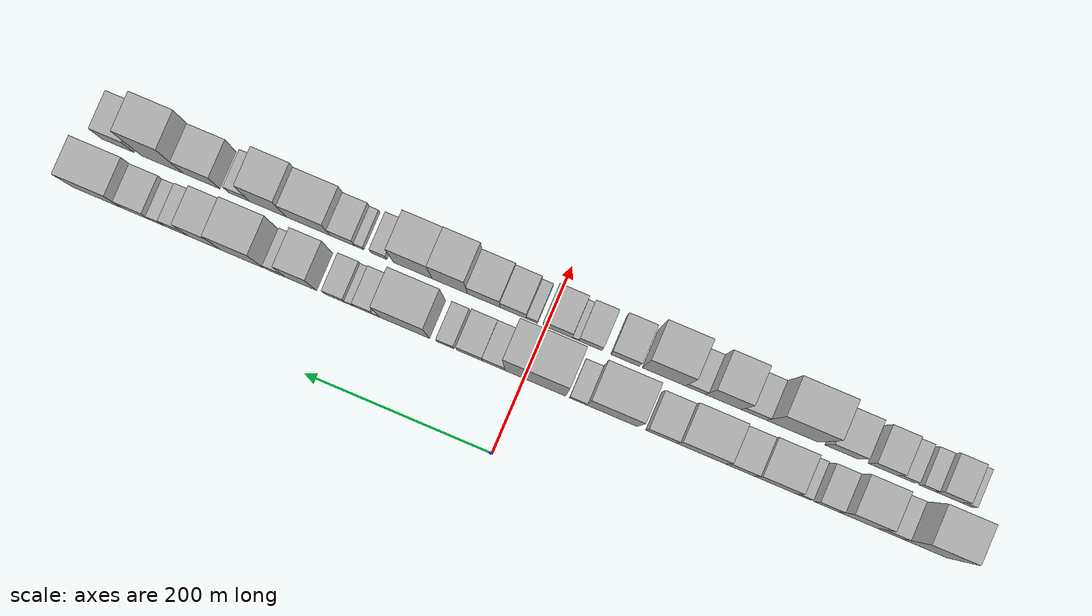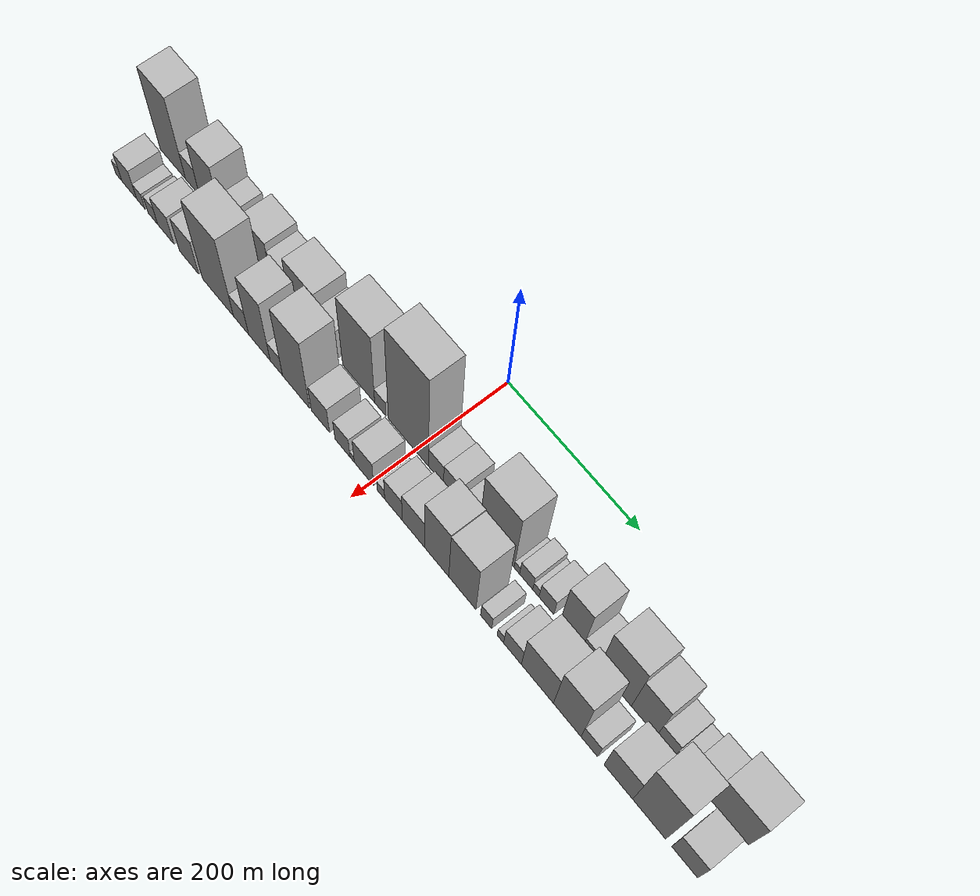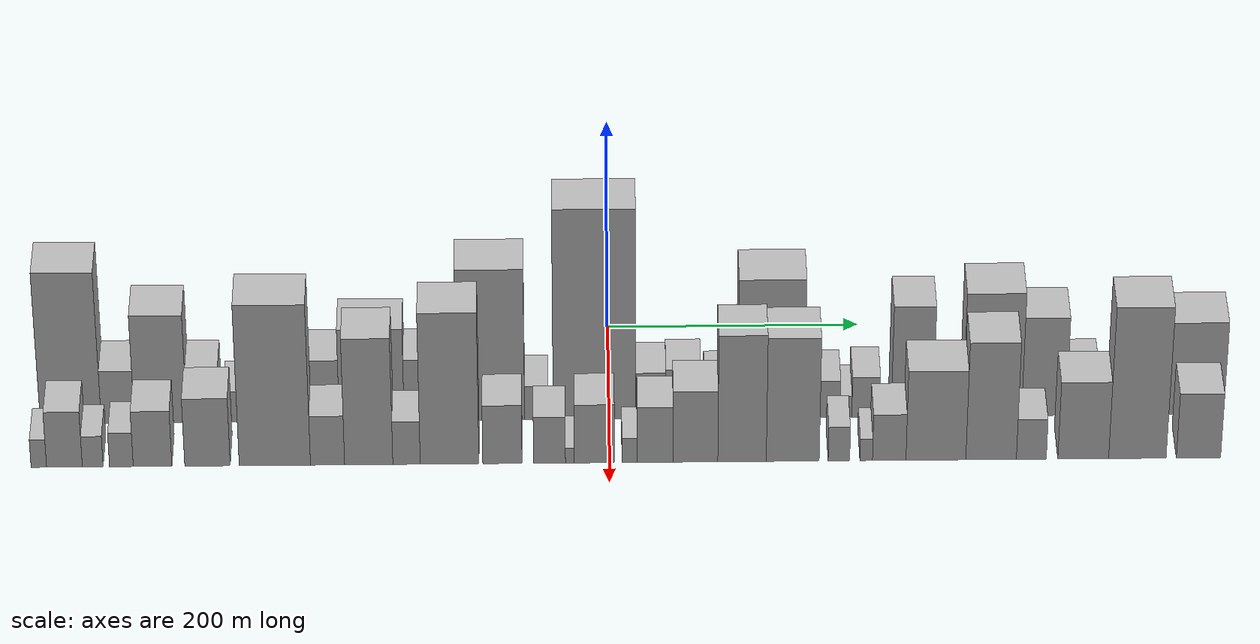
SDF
<sdf version="1.6">
 <world name="default">
  <scene>
   <sky><clouds><speed>12</speed></clouds></sky>
   <ambient>0.4 0.4 0.4 1</ambient>
   <background>0.7 0.7 0.7 1</background>
   <shadows>1</shadows>
  </scene>
  <gravity>0 0 -9.8066</gravity>
  <magnetic_field>6e-06 2.3e-05 -4.2e-05</magnetic_field>
  <physics default="0" name="default_physics" type="ode">
   <ode>
    <solver>
     <type>quick</type>
     <iters>10</iters>
     <sor>1.0</sor>
     <use_dynamic_moi_rescaling>0</use_dynamic_moi_rescaling>
    </solver>
    <constraints>
     <cfm>0</cfm>
     <erp>0.2</erp>
     <contact_max_correcting_vel>100</contact_max_correcting_vel>
     <contact_surface_layer>0.001</contact_surface_layer>
    </constraints>
   </ode>
   <max_step_size>0.004</max_step_size>
   <real_time_factor>1</real_time_factor>
   <real_time_update_rate>250</real_time_update_rate>
  </physics>
  <light name="sun" type="directional">
   <pose>0 0 10 0 0 0</pose>
   <diffuse>0.8 0.8 0.8 1</diffuse>
   <specular>0.2 0.2 0.2 1</specular>
   <attenuation>
    <range>1000</range>
    <constant>0.9</constant>
    <linear>0.01</linear>
    <quadratic>0.001</quadratic>
   </attenuation>
   <direction>-0.5 0.1 -0.9</direction>
  </light>
  <model name="building_1">
   <static>1</static>
   <pose>100.0000 -422.1327 0 0.000000 0.000000 0.000000</pose>
   <link name="link">
    <pose>0 0 73.50 0 0 0</pose>
    <collision name="collision"><geometry><box><size>40.0000 47.7346 147.0000</size></box></geometry></collision>
    <visual name="visual">
     <cast_shadows>0</cast_shadows>
     <geometry><box><size>40.0000 47.7346 147.0000</size></box></geometry>
     <material>
      <script>
       <uri>model://HANNAS_wall/materials/scripts</uri>
       <uri>model://HANNAS_wall/materials/textures</uri>
       <name>vrc/HANNAS_wall</name>
      </script>
     </material>
    </visual>
   </link>
  </model>
  <model name="building_2">
   <static>1</static>
   <pose>100.0000 -385.2624 0 0.000000 0.000000 0.000000</pose>
   <link name="link">
    <pose>0 0 25.50 0 0 0</pose>
    <collision name="collision"><geometry><box><size>40.0000 26.0059 51.0000</size></box></geometry></collision>
    <visual name="visual">
     <cast_shadows>0</cast_shadows>
     <geometry><box><size>40.0000 26.0059 51.0000</size></box></geometry>
     <material>
      <script>
       <uri>model://HANNAS_wall/materials/scripts</uri>
       <uri>model://HANNAS_wall/materials/textures</uri>
       <name>vrc/HANNAS_wall</name>
      </script>
     </material>
    </visual>
   </link>
  </model>
  <model name="building_3">
   <static>1</static>
   <pose>100.0000 -351.6800 0 0.000000 0.000000 0.000000</pose>
   <link name="link">
    <pose>0 0 52.50 0 0 0</pose>
    <collision name="collision"><geometry><box><size>40.0000 41.1588 105.0000</size></box></geometry></collision>
    <visual name="visual">
     <cast_shadows>0</cast_shadows>
     <geometry><box><size>40.0000 41.1588 105.0000</size></box></geometry>
     <material>
      <script>
       <uri>model://HANNAS_wall/materials/scripts</uri>
       <uri>model://HANNAS_wall/materials/textures</uri>
       <name>vrc/HANNAS_wall</name>
      </script>
     </material>
    </visual>
   </link>
  </model>
  <model name="building_4">
   <static>1</static>
   <pose>100.0000 -318.3267 0 0.000000 0.000000 0.000000</pose>
   <link name="link">
    <pose>0 0 25.50 0 0 0</pose>
    <collision name="collision"><geometry><box><size>40.0000 25.5478 51.0000</size></box></geometry></collision>
    <visual name="visual">
     <cast_shadows>0</cast_shadows>
     <geometry><box><size>40.0000 25.5478 51.0000</size></box></geometry>
     <material>
      <script>
       <uri>model://HANNAS_wall/materials/scripts</uri>
       <uri>model://HANNAS_wall/materials/textures</uri>
       <name>vrc/HANNAS_wall</name>
      </script>
     </material>
    </visual>
   </link>
  </model>
  <model name="building_5">
   <static>1</static>
   <pose>100.0000 -293.6844 0 0.000000 0.000000 0.000000</pose>
   <link name="link">
    <pose>0 0 15.00 0 0 0</pose>
    <collision name="collision"><geometry><box><size>40.0000 15.7367 30.0000</size></box></geometry></collision>
    <visual name="visual">
     <cast_shadows>0</cast_shadows>
     <geometry><box><size>40.0000 15.7367 30.0000</size></box></geometry>
     <material>
      <script>
       <uri>model://HANNAS_wall/materials/scripts</uri>
       <uri>model://HANNAS_wall/materials/textures</uri>
       <name>vrc/HANNAS_wall</name>
      </script>
     </material>
    </visual>
   </link>
  </model>
  <model name="building_6">
   <static>1</static>
   <pose>100.0000 -264.4097 0 0.000000 0.000000 0.000000</pose>
   <link name="link">
    <pose>0 0 37.50 0 0 0</pose>
    <collision name="collision"><geometry><box><size>40.0000 42.8128 75.0000</size></box></geometry></collision>
    <visual name="visual">
     <cast_shadows>0</cast_shadows>
     <geometry><box><size>40.0000 42.8128 75.0000</size></box></geometry>
     <material>
      <script>
       <uri>model://HANNAS_wall/materials/scripts</uri>
       <uri>model://HANNAS_wall/materials/textures</uri>
       <name>vrc/HANNAS_wall</name>
      </script>
     </material>
    </visual>
   </link>
  </model>
  <model name="building_7">
   <static>1</static>
   <pose>100.0000 -227.2909 0 0.000000 0.000000 0.000000</pose>
   <link name="link">
    <pose>0 0 30.00 0 0 0</pose>
    <collision name="collision"><geometry><box><size>40.0000 31.4248 60.0000</size></box></geometry></collision>
    <visual name="visual">
     <cast_shadows>0</cast_shadows>
     <geometry><box><size>40.0000 31.4248 60.0000</size></box></geometry>
     <material>
      <script>
       <uri>model://HANNAS_wall/materials/scripts</uri>
       <uri>model://HANNAS_wall/materials/textures</uri>
       <name>vrc/HANNAS_wall</name>
      </script>
     </material>
    </visual>
   </link>
  </model>
  <model name="building_8">
   <static>1</static>
   <pose>100.0000 -186.1500 0 0.000000 0.000000 0.000000</pose>
   <link name="link">
    <pose>0 0 45.00 0 0 0</pose>
    <collision name="collision"><geometry><box><size>40.0000 50.8571 90.0000</size></box></geometry></collision>
    <visual name="visual">
     <cast_shadows>0</cast_shadows>
     <geometry><box><size>40.0000 50.8571 90.0000</size></box></geometry>
     <material>
      <script>
       <uri>model://HANNAS_wall/materials/scripts</uri>
       <uri>model://HANNAS_wall/materials/textures</uri>
       <name>vrc/HANNAS_wall</name>
      </script>
     </material>
    </visual>
   </link>
  </model>
  <model name="building_9">
   <static>1</static>
   <pose>100.0000 -144.5697 0 0.000000 0.000000 0.000000</pose>
   <link name="link">
    <pose>0 0 30.00 0 0 0</pose>
    <collision name="collision"><geometry><box><size>40.0000 32.3034 60.0000</size></box></geometry></collision>
    <visual name="visual">
     <cast_shadows>0</cast_shadows>
     <geometry><box><size>40.0000 32.3034 60.0000</size></box></geometry>
     <material>
      <script>
       <uri>model://HANNAS_wall/materials/scripts</uri>
       <uri>model://HANNAS_wall/materials/textures</uri>
       <name>vrc/HANNAS_wall</name>
      </script>
     </material>
    </visual>
   </link>
  </model>
  <model name="building_10">
   <static>1</static>
   <pose>100.0000 -92.7978 0 0.000000 0.000000 0.000000</pose>
   <link name="link">
    <pose>0 0 73.50 0 0 0</pose>
    <collision name="collision"><geometry><box><size>40.0000 53.2404 147.0000</size></box></geometry></collision>
    <visual name="visual">
     <cast_shadows>0</cast_shadows>
     <geometry><box><size>40.0000 53.2404 147.0000</size></box></geometry>
     <material>
      <script>
       <uri>model://HANNAS_wall/materials/scripts</uri>
       <uri>model://HANNAS_wall/materials/textures</uri>
       <name>vrc/HANNAS_wall</name>
      </script>
     </material>
    </visual>
   </link>
  </model>
  <model name="building_11">
   <static>1</static>
   <pose>100.0000 -56.9351 0 0.000000 0.000000 0.000000</pose>
   <link name="link">
    <pose>0 0 16.50 0 0 0</pose>
    <collision name="collision"><geometry><box><size>40.0000 18.4851 33.0000</size></box></geometry></collision>
    <visual name="visual">
     <cast_shadows>0</cast_shadows>
     <geometry><box><size>40.0000 18.4851 33.0000</size></box></geometry>
     <material>
      <script>
       <uri>model://HANNAS_wall/materials/scripts</uri>
       <uri>model://HANNAS_wall/materials/textures</uri>
       <name>vrc/HANNAS_wall</name>
      </script>
     </material>
    </visual>
   </link>
  </model>
  <model name="building_12">
   <static>1</static>
   <pose>100.0000 -11.4706 0 0.000000 0.000000 0.000000</pose>
   <link name="link">
    <pose>0 0 102.00 0 0 0</pose>
    <collision name="collision"><geometry><box><size>40.0000 64.4438 204.0000</size></box></geometry></collision>
    <visual name="visual">
     <cast_shadows>0</cast_shadows>
     <geometry><box><size>40.0000 64.4438 204.0000</size></box></geometry>
     <material>
      <script>
       <uri>model://HANNAS_wall/materials/scripts</uri>
       <uri>model://HANNAS_wall/materials/textures</uri>
       <name>vrc/HANNAS_wall</name>
      </script>
     </material>
    </visual>
   </link>
  </model>
  <model name="building_13">
   <static>1</static>
   <pose>100.0000 32.6916 0 0.000000 0.000000 0.000000</pose>
   <link name="link">
    <pose>0 0 22.50 0 0 0</pose>
    <collision name="collision"><geometry><box><size>40.0000 23.8807 45.0000</size></box></geometry></collision>
    <visual name="visual">
     <cast_shadows>0</cast_shadows>
     <geometry><box><size>40.0000 23.8807 45.0000</size></box></geometry>
     <material>
      <script>
       <uri>model://HANNAS_wall/materials/scripts</uri>
       <uri>model://HANNAS_wall/materials/textures</uri>
       <name>vrc/HANNAS_wall</name>
      </script>
     </material>
    </visual>
   </link>
  </model>
  <model name="building_14">
   <static>1</static>
   <pose>100.0000 58.2727 0 0.000000 0.000000 0.000000</pose>
   <link name="link">
    <pose>0 0 24.00 0 0 0</pose>
    <collision name="collision"><geometry><box><size>40.0000 27.2813 48.0000</size></box></geometry></collision>
    <visual name="visual">
     <cast_shadows>0</cast_shadows>
     <geometry><box><size>40.0000 27.2813 48.0000</size></box></geometry>
     <material>
      <script>
       <uri>model://HANNAS_wall/materials/scripts</uri>
       <uri>model://HANNAS_wall/materials/textures</uri>
       <name>vrc/HANNAS_wall</name>
      </script>
     </material>
    </visual>
   </link>
  </model>
  <model name="building_15">
   <static>1</static>
   <pose>100.0000 84.0042 0 0.000000 0.000000 0.000000</pose>
   <link name="link">
    <pose>0 0 18.00 0 0 0</pose>
    <collision name="collision"><geometry><box><size>40.0000 18.1818 36.0000</size></box></geometry></collision>
    <visual name="visual">
     <cast_shadows>0</cast_shadows>
     <geometry><box><size>40.0000 18.1818 36.0000</size></box></geometry>
     <material>
      <script>
       <uri>model://HANNAS_wall/materials/scripts</uri>
       <uri>model://HANNAS_wall/materials/textures</uri>
       <name>vrc/HANNAS_wall</name>
      </script>
     </material>
    </visual>
   </link>
  </model>
  <model name="building_16">
   <static>1</static>
   <pose>100.0000 127.2694 0 0.000000 0.000000 0.000000</pose>
   <link name="link">
    <pose>0 0 67.50 0 0 0</pose>
    <collision name="collision"><geometry><box><size>40.0000 52.3485 135.0000</size></box></geometry></collision>
    <visual name="visual">
     <cast_shadows>0</cast_shadows>
     <geometry><box><size>40.0000 52.3485 135.0000</size></box></geometry>
     <material>
      <script>
       <uri>model://HANNAS_wall/materials/scripts</uri>
       <uri>model://HANNAS_wall/materials/textures</uri>
       <name>vrc/HANNAS_wall</name>
      </script>
     </material>
    </visual>
   </link>
  </model>
  <model name="building_17">
   <static>1</static>
   <pose>100.0000 157.6411 0 0.000000 0.000000 0.000000</pose>
   <link name="link">
    <pose>0 0 9.00 0 0 0</pose>
    <collision name="collision"><geometry><box><size>40.0000 8.3950 18.0000</size></box></geometry></collision>
    <visual name="visual">
     <cast_shadows>0</cast_shadows>
     <geometry><box><size>40.0000 8.3950 18.0000</size></box></geometry>
     <material>
      <script>
       <uri>model://HANNAS_wall/materials/scripts</uri>
       <uri>model://HANNAS_wall/materials/textures</uri>
       <name>vrc/HANNAS_wall</name>
      </script>
     </material>
    </visual>
   </link>
  </model>
  <model name="building_18">
   <static>1</static>
   <pose>100.0000 171.6887 0 0.000000 0.000000 0.000000</pose>
   <link name="link">
    <pose>0 0 18.00 0 0 0</pose>
    <collision name="collision"><geometry><box><size>40.0000 19.7000 36.0000</size></box></geometry></collision>
    <visual name="visual">
     <cast_shadows>0</cast_shadows>
     <geometry><box><size>40.0000 19.7000 36.0000</size></box></geometry>
     <material>
      <script>
       <uri>model://HANNAS_wall/materials/scripts</uri>
       <uri>model://HANNAS_wall/materials/textures</uri>
       <name>vrc/HANNAS_wall</name>
      </script>
     </material>
    </visual>
   </link>
  </model>
  <model name="building_19">
   <static>1</static>
   <pose>100.0000 186.1361 0 0.000000 0.000000 0.000000</pose>
   <link name="link">
    <pose>0 0 10.50 0 0 0</pose>
    <collision name="collision"><geometry><box><size>40.0000 9.1949 21.0000</size></box></geometry></collision>
    <visual name="visual">
     <cast_shadows>0</cast_shadows>
     <geometry><box><size>40.0000 9.1949 21.0000</size></box></geometry>
     <material>
      <script>
       <uri>model://HANNAS_wall/materials/scripts</uri>
       <uri>model://HANNAS_wall/materials/textures</uri>
       <name>vrc/HANNAS_wall</name>
      </script>
     </material>
    </visual>
   </link>
  </model>
  <model name="building_20">
   <static>1</static>
   <pose>100.0000 201.6936 0 0.000000 0.000000 0.000000</pose>
   <link name="link">
    <pose>0 0 19.50 0 0 0</pose>
    <collision name="collision"><geometry><box><size>40.0000 21.9200 39.0000</size></box></geometry></collision>
    <visual name="visual">
     <cast_shadows>0</cast_shadows>
     <geometry><box><size>40.0000 21.9200 39.0000</size></box></geometry>
     <material>
      <script>
       <uri>model://HANNAS_wall/materials/scripts</uri>
       <uri>model://HANNAS_wall/materials/textures</uri>
       <name>vrc/HANNAS_wall</name>
      </script>
     </material>
    </visual>
   </link>
  </model>
  <model name="building_21">
   <static>1</static>
   <pose>100.0000 238.1112 0 0.000000 0.000000 0.000000</pose>
   <link name="link">
    <pose>0 0 54.00 0 0 0</pose>
    <collision name="collision"><geometry><box><size>40.0000 32.9152 108.0000</size></box></geometry></collision>
    <visual name="visual">
     <cast_shadows>0</cast_shadows>
     <geometry><box><size>40.0000 32.9152 108.0000</size></box></geometry>
     <material>
      <script>
       <uri>model://HANNAS_wall/materials/scripts</uri>
       <uri>model://HANNAS_wall/materials/textures</uri>
       <name>vrc/HANNAS_wall</name>
      </script>
     </material>
    </visual>
   </link>
  </model>
  <model name="building_22">
   <static>1</static>
   <pose>100.0000 264.8213 0 0.000000 0.000000 0.000000</pose>
   <link name="link">
    <pose>0 0 18.00 0 0 0</pose>
    <collision name="collision"><geometry><box><size>40.0000 20.5051 36.0000</size></box></geometry></collision>
    <visual name="visual">
     <cast_shadows>0</cast_shadows>
     <geometry><box><size>40.0000 20.5051 36.0000</size></box></geometry>
     <material>
      <script>
       <uri>model://HANNAS_wall/materials/scripts</uri>
       <uri>model://HANNAS_wall/materials/textures</uri>
       <name>vrc/HANNAS_wall</name>
      </script>
     </material>
    </visual>
   </link>
  </model>
  <model name="building_23">
   <static>1</static>
   <pose>100.0000 301.1008 0 0.000000 0.000000 0.000000</pose>
   <link name="link">
    <pose>0 0 60.00 0 0 0</pose>
    <collision name="collision"><geometry><box><size>40.0000 46.0538 120.0000</size></box></geometry></collision>
    <visual name="visual">
     <cast_shadows>0</cast_shadows>
     <geometry><box><size>40.0000 46.0538 120.0000</size></box></geometry>
     <material>
      <script>
       <uri>model://HANNAS_wall/materials/scripts</uri>
       <uri>model://HANNAS_wall/materials/textures</uri>
       <name>vrc/HANNAS_wall</name>
      </script>
     </material>
    </visual>
   </link>
  </model>
  <model name="building_24">
   <static>1</static>
   <pose>100.0000 341.6307 0 0.000000 0.000000 0.000000</pose>
   <link name="link">
    <pose>0 0 48.00 0 0 0</pose>
    <collision name="collision"><geometry><box><size>40.0000 35.0061 96.0000</size></box></geometry></collision>
    <visual name="visual">
     <cast_shadows>0</cast_shadows>
     <geometry><box><size>40.0000 35.0061 96.0000</size></box></geometry>
     <material>
      <script>
       <uri>model://HANNAS_wall/materials/scripts</uri>
       <uri>model://HANNAS_wall/materials/textures</uri>
       <name>vrc/HANNAS_wall</name>
      </script>
     </material>
    </visual>
   </link>
  </model>
  <model name="building_25">
   <static>1</static>
   <pose>100.0000 371.3694 0 0.000000 0.000000 0.000000</pose>
   <link name="link">
    <pose>0 0 22.50 0 0 0</pose>
    <collision name="collision"><geometry><box><size>40.0000 24.4712 45.0000</size></box></geometry></collision>
    <visual name="visual">
     <cast_shadows>0</cast_shadows>
     <geometry><box><size>40.0000 24.4712 45.0000</size></box></geometry>
     <material>
      <script>
       <uri>model://HANNAS_wall/materials/scripts</uri>
       <uri>model://HANNAS_wall/materials/textures</uri>
       <name>vrc/HANNAS_wall</name>
      </script>
     </material>
    </visual>
   </link>
  </model>
  <model name="building_26">
   <static>1</static>
   <pose>100.0000 391.4854 0 0.000000 0.000000 0.000000</pose>
   <link name="link">
    <pose>0 0 15.00 0 0 0</pose>
    <collision name="collision"><geometry><box><size>40.0000 15.7609 30.0000</size></box></geometry></collision>
    <visual name="visual">
     <cast_shadows>0</cast_shadows>
     <geometry><box><size>40.0000 15.7609 30.0000</size></box></geometry>
     <material>
      <script>
       <uri>model://HANNAS_wall/materials/scripts</uri>
       <uri>model://HANNAS_wall/materials/textures</uri>
       <name>vrc/HANNAS_wall</name>
      </script>
     </material>
    </visual>
   </link>
  </model>
  <model name="building_27">
   <static>1</static>
   <pose>100.0000 414.4124 0 0.000000 0.000000 0.000000</pose>
   <link name="link">
    <pose>0 0 25.50 0 0 0</pose>
    <collision name="collision"><geometry><box><size>40.0000 30.0930 51.0000</size></box></geometry></collision>
    <visual name="visual">
     <cast_shadows>0</cast_shadows>
     <geometry><box><size>40.0000 30.0930 51.0000</size></box></geometry>
     <material>
      <script>
       <uri>model://HANNAS_wall/materials/scripts</uri>
       <uri>model://HANNAS_wall/materials/textures</uri>
       <name>vrc/HANNAS_wall</name>
      </script>
     </material>
    </visual>
   </link>
  </model>
  <model name="building_28">
   <static>1</static>
   <pose>100.0000 456.2882 0 0.000000 0.000000 0.000000</pose>
   <link name="link">
    <pose>0 0 45.00 0 0 0</pose>
    <collision name="collision"><geometry><box><size>40.0000 53.6588 90.0000</size></box></geometry></collision>
    <visual name="visual">
     <cast_shadows>0</cast_shadows>
     <geometry><box><size>40.0000 53.6588 90.0000</size></box></geometry>
     <material>
      <script>
       <uri>model://HANNAS_wall/materials/scripts</uri>
       <uri>model://HANNAS_wall/materials/textures</uri>
       <name>vrc/HANNAS_wall</name>
      </script>
     </material>
    </visual>
   </link>
  </model>
  <model name="building_29">
   <static>1</static>
   <pose>155.0000 -443.9658 0 0.000000 0.000000 0.000000</pose>
   <link name="link">
    <pose>0 0 13.50 0 0 0</pose>
    <collision name="collision"><geometry><box><size>40.0000 12.0684 27.0000</size></box></geometry></collision>
    <visual name="visual">
     <cast_shadows>0</cast_shadows>
     <geometry><box><size>40.0000 12.0684 27.0000</size></box></geometry>
     <material>
      <script>
       <uri>model://HANNAS_wall/materials/scripts</uri>
       <uri>model://HANNAS_wall/materials/textures</uri>
       <name>vrc/HANNAS_wall</name>
      </script>
     </material>
    </visual>
   </link>
  </model>
  <model name="building_30">
   <static>1</static>
   <pose>155.0000 -424.0452 0 0.000000 0.000000 0.000000</pose>
   <link name="link">
    <pose>0 0 27.00 0 0 0</pose>
    <collision name="collision"><geometry><box><size>40.0000 27.7727 54.0000</size></box></geometry></collision>
    <visual name="visual">
     <cast_shadows>0</cast_shadows>
     <geometry><box><size>40.0000 27.7727 54.0000</size></box></geometry>
     <material>
      <script>
       <uri>model://HANNAS_wall/materials/scripts</uri>
       <uri>model://HANNAS_wall/materials/textures</uri>
       <name>vrc/HANNAS_wall</name>
      </script>
     </material>
    </visual>
   </link>
  </model>
  <model name="building_31">
   <static>1</static>
   <pose>155.0000 -402.0750 0 0.000000 0.000000 0.000000</pose>
   <link name="link">
    <pose>0 0 15.00 0 0 0</pose>
    <collision name="collision"><geometry><box><size>40.0000 16.1677 30.0000</size></box></geometry></collision>
    <visual name="visual">
     <cast_shadows>0</cast_shadows>
     <geometry><box><size>40.0000 16.1677 30.0000</size></box></geometry>
     <material>
      <script>
       <uri>model://HANNAS_wall/materials/scripts</uri>
       <uri>model://HANNAS_wall/materials/textures</uri>
       <name>vrc/HANNAS_wall</name>
      </script>
     </material>
    </visual>
   </link>
  </model>
  <model name="building_32">
   <static>1</static>
   <pose>155.0000 -379.7830 0 0.000000 0.000000 0.000000</pose>
   <link name="link">
    <pose>0 0 16.50 0 0 0</pose>
    <collision name="collision"><geometry><box><size>40.0000 18.4163 33.0000</size></box></geometry></collision>
    <visual name="visual">
     <cast_shadows>0</cast_shadows>
     <geometry><box><size>40.0000 18.4163 33.0000</size></box></geometry>
     <material>
      <script>
       <uri>model://HANNAS_wall/materials/scripts</uri>
       <uri>model://HANNAS_wall/materials/textures</uri>
       <name>vrc/HANNAS_wall</name>
      </script>
     </material>
    </visual>
   </link>
  </model>
  <model name="building_33">
   <static>1</static>
   <pose>155.0000 -355.5443 0 0.000000 0.000000 0.000000</pose>
   <link name="link">
    <pose>0 0 27.00 0 0 0</pose>
    <collision name="collision"><geometry><box><size>40.0000 30.0610 54.0000</size></box></geometry></collision>
    <visual name="visual">
     <cast_shadows>0</cast_shadows>
     <geometry><box><size>40.0000 30.0610 54.0000</size></box></geometry>
     <material>
      <script>
       <uri>model://HANNAS_wall/materials/scripts</uri>
       <uri>model://HANNAS_wall/materials/textures</uri>
       <name>vrc/HANNAS_wall</name>
      </script>
     </material>
    </visual>
   </link>
  </model>
  <model name="building_34">
   <static>1</static>
   <pose>155.0000 -312.8508 0 0.000000 0.000000 0.000000</pose>
   <link name="link">
    <pose>0 0 33.00 0 0 0</pose>
    <collision name="collision"><geometry><box><size>40.0000 35.3261 66.0000</size></box></geometry></collision>
    <visual name="visual">
     <cast_shadows>0</cast_shadows>
     <geometry><box><size>40.0000 35.3261 66.0000</size></box></geometry>
     <material>
      <script>
       <uri>model://HANNAS_wall/materials/scripts</uri>
       <uri>model://HANNAS_wall/materials/textures</uri>
       <name>vrc/HANNAS_wall</name>
      </script>
     </material>
    </visual>
   </link>
  </model>
  <model name="building_35">
   <static>1</static>
   <pose>155.0000 -260.4893 0 0.000000 0.000000 0.000000</pose>
   <link name="link">
    <pose>0 0 78.00 0 0 0</pose>
    <collision name="collision"><geometry><box><size>40.0000 55.3969 156.0000</size></box></geometry></collision>
    <visual name="visual">
     <cast_shadows>0</cast_shadows>
     <geometry><box><size>40.0000 55.3969 156.0000</size></box></geometry>
     <material>
      <script>
       <uri>model://HANNAS_wall/materials/scripts</uri>
       <uri>model://HANNAS_wall/materials/textures</uri>
       <name>vrc/HANNAS_wall</name>
      </script>
     </material>
    </visual>
   </link>
  </model>
  <model name="building_36">
   <static>1</static>
   <pose>155.0000 -219.5092 0 0.000000 0.000000 0.000000</pose>
   <link name="link">
    <pose>0 0 24.00 0 0 0</pose>
    <collision name="collision"><geometry><box><size>40.0000 26.5632 48.0000</size></box></geometry></collision>
    <visual name="visual">
     <cast_shadows>0</cast_shadows>
     <geometry><box><size>40.0000 26.5632 48.0000</size></box></geometry>
     <material>
      <script>
       <uri>model://HANNAS_wall/materials/scripts</uri>
       <uri>model://HANNAS_wall/materials/textures</uri>
       <name>vrc/HANNAS_wall</name>
      </script>
     </material>
    </visual>
   </link>
  </model>
  <model name="building_37">
   <static>1</static>
   <pose>155.0000 -187.4792 0 0.000000 0.000000 0.000000</pose>
   <link name="link">
    <pose>0 0 61.50 0 0 0</pose>
    <collision name="collision"><geometry><box><size>40.0000 37.4968 123.0000</size></box></geometry></collision>
    <visual name="visual">
     <cast_shadows>0</cast_shadows>
     <geometry><box><size>40.0000 37.4968 123.0000</size></box></geometry>
     <material>
      <script>
       <uri>model://HANNAS_wall/materials/scripts</uri>
       <uri>model://HANNAS_wall/materials/textures</uri>
       <name>vrc/HANNAS_wall</name>
      </script>
     </material>
    </visual>
   </link>
  </model>
  <model name="building_38">
   <static>1</static>
   <pose>155.0000 -158.0701 0 0.000000 0.000000 0.000000</pose>
   <link name="link">
    <pose>0 0 21.00 0 0 0</pose>
    <collision name="collision"><geometry><box><size>40.0000 21.3215 42.0000</size></box></geometry></collision>
    <visual name="visual">
     <cast_shadows>0</cast_shadows>
     <geometry><box><size>40.0000 21.3215 42.0000</size></box></geometry>
     <material>
      <script>
       <uri>model://HANNAS_wall/materials/scripts</uri>
       <uri>model://HANNAS_wall/materials/textures</uri>
       <name>vrc/HANNAS_wall</name>
      </script>
     </material>
    </visual>
   </link>
  </model>
  <model name="building_39">
   <static>1</static>
   <pose>155.0000 -124.5796 0 0.000000 0.000000 0.000000</pose>
   <link name="link">
    <pose>0 0 73.50 0 0 0</pose>
    <collision name="collision"><geometry><box><size>40.0000 45.6594 147.0000</size></box></geometry></collision>
    <visual name="visual">
     <cast_shadows>0</cast_shadows>
     <geometry><box><size>40.0000 45.6594 147.0000</size></box></geometry>
     <material>
      <script>
       <uri>model://HANNAS_wall/materials/scripts</uri>
       <uri>model://HANNAS_wall/materials/textures</uri>
       <name>vrc/HANNAS_wall</name>
      </script>
     </material>
    </visual>
   </link>
  </model>
  <model name="building_40">
   <static>1</static>
   <pose>155.0000 -83.4918 0 0.000000 0.000000 0.000000</pose>
   <link name="link">
    <pose>0 0 28.50 0 0 0</pose>
    <collision name="collision"><geometry><box><size>40.0000 30.5162 57.0000</size></box></geometry></collision>
    <visual name="visual">
     <cast_shadows>0</cast_shadows>
     <geometry><box><size>40.0000 30.5162 57.0000</size></box></geometry>
     <material>
      <script>
       <uri>model://HANNAS_wall/materials/scripts</uri>
       <uri>model://HANNAS_wall/materials/textures</uri>
       <name>vrc/HANNAS_wall</name>
      </script>
     </material>
    </visual>
   </link>
  </model>
  <model name="building_41">
   <static>1</static>
   <pose>155.0000 -46.8419 0 0.000000 0.000000 0.000000</pose>
   <link name="link">
    <pose>0 0 22.50 0 0 0</pose>
    <collision name="collision"><geometry><box><size>40.0000 24.7837 45.0000</size></box></geometry></collision>
    <visual name="visual">
     <cast_shadows>0</cast_shadows>
     <geometry><box><size>40.0000 24.7837 45.0000</size></box></geometry>
     <material>
      <script>
       <uri>model://HANNAS_wall/materials/scripts</uri>
       <uri>model://HANNAS_wall/materials/textures</uri>
       <name>vrc/HANNAS_wall</name>
      </script>
     </material>
    </visual>
   </link>
  </model>
  <model name="building_42">
   <static>1</static>
   <pose>155.0000 -30.9647 0 0.000000 0.000000 0.000000</pose>
   <link name="link">
    <pose>0 0 7.50 0 0 0</pose>
    <collision name="collision"><geometry><box><size>40.0000 6.9707 15.0000</size></box></geometry></collision>
    <visual name="visual">
     <cast_shadows>0</cast_shadows>
     <geometry><box><size>40.0000 6.9707 15.0000</size></box></geometry>
     <material>
      <script>
       <uri>model://HANNAS_wall/materials/scripts</uri>
       <uri>model://HANNAS_wall/materials/textures</uri>
       <name>vrc/HANNAS_wall</name>
      </script>
     </material>
    </visual>
   </link>
  </model>
  <model name="building_43">
   <static>1</static>
   <pose>155.0000 -11.9227 0 0.000000 0.000000 0.000000</pose>
   <link name="link">
    <pose>0 0 28.50 0 0 0</pose>
    <collision name="collision"><geometry><box><size>40.0000 31.1133 57.0000</size></box></geometry></collision>
    <visual name="visual">
     <cast_shadows>0</cast_shadows>
     <geometry><box><size>40.0000 31.1133 57.0000</size></box></geometry>
     <material>
      <script>
       <uri>model://HANNAS_wall/materials/scripts</uri>
       <uri>model://HANNAS_wall/materials/textures</uri>
       <name>vrc/HANNAS_wall</name>
      </script>
     </material>
    </visual>
   </link>
  </model>
  <model name="building_44">
   <static>1</static>
   <pose>155.0000 15.5941 0 0.000000 0.000000 0.000000</pose>
   <link name="link">
    <pose>0 0 12.00 0 0 0</pose>
    <collision name="collision"><geometry><box><size>40.0000 11.9204 24.0000</size></box></geometry></collision>
    <visual name="visual">
     <cast_shadows>0</cast_shadows>
     <geometry><box><size>40.0000 11.9204 24.0000</size></box></geometry>
     <material>
      <script>
       <uri>model://HANNAS_wall/materials/scripts</uri>
       <uri>model://HANNAS_wall/materials/textures</uri>
       <name>vrc/HANNAS_wall</name>
      </script>
     </material>
    </visual>
   </link>
  </model>
  <model name="building_45">
   <static>1</static>
   <pose>155.0000 35.4498 0 0.000000 0.000000 0.000000</pose>
   <link name="link">
    <pose>0 0 27.00 0 0 0</pose>
    <collision name="collision"><geometry><box><size>40.0000 27.7910 54.0000</size></box></geometry></collision>
    <visual name="visual">
     <cast_shadows>0</cast_shadows>
     <geometry><box><size>40.0000 27.7910 54.0000</size></box></geometry>
     <material>
      <script>
       <uri>model://HANNAS_wall/materials/scripts</uri>
       <uri>model://HANNAS_wall/materials/textures</uri>
       <name>vrc/HANNAS_wall</name>
      </script>
     </material>
    </visual>
   </link>
  </model>
  <model name="building_46">
   <static>1</static>
   <pose>155.0000 66.7487 0 0.000000 0.000000 0.000000</pose>
   <link name="link">
    <pose>0 0 34.50 0 0 0</pose>
    <collision name="collision"><geometry><box><size>40.0000 34.8068 69.0000</size></box></geometry></collision>
    <visual name="visual">
     <cast_shadows>0</cast_shadows>
     <geometry><box><size>40.0000 34.8068 69.0000</size></box></geometry>
     <material>
      <script>
       <uri>model://HANNAS_wall/materials/scripts</uri>
       <uri>model://HANNAS_wall/materials/textures</uri>
       <name>vrc/HANNAS_wall</name>
      </script>
     </material>
    </visual>
   </link>
  </model>
  <model name="building_47">
   <static>1</static>
   <pose>155.0000 103.0317 0 0.000000 0.000000 0.000000</pose>
   <link name="link">
    <pose>0 0 61.50 0 0 0</pose>
    <collision name="collision"><geometry><box><size>40.0000 37.7592 123.0000</size></box></geometry></collision>
    <visual name="visual">
     <cast_shadows>0</cast_shadows>
     <geometry><box><size>40.0000 37.7592 123.0000</size></box></geometry>
     <material>
      <script>
       <uri>model://HANNAS_wall/materials/scripts</uri>
       <uri>model://HANNAS_wall/materials/textures</uri>
       <name>vrc/HANNAS_wall</name>
      </script>
     </material>
    </visual>
   </link>
  </model>
  <model name="building_48">
   <static>1</static>
   <pose>155.0000 142.5143 0 0.000000 0.000000 0.000000</pose>
   <link name="link">
    <pose>0 0 60.00 0 0 0</pose>
    <collision name="collision"><geometry><box><size>40.0000 41.2062 120.0000</size></box></geometry></collision>
    <visual name="visual">
     <cast_shadows>0</cast_shadows>
     <geometry><box><size>40.0000 41.2062 120.0000</size></box></geometry>
     <material>
      <script>
       <uri>model://HANNAS_wall/materials/scripts</uri>
       <uri>model://HANNAS_wall/materials/textures</uri>
       <name>vrc/HANNAS_wall</name>
      </script>
     </material>
    </visual>
   </link>
  </model>
  <model name="building_49">
   <static>1</static>
   <pose>155.0000 178.5070 0 0.000000 0.000000 0.000000</pose>
   <link name="link">
    <pose>0 0 16.50 0 0 0</pose>
    <collision name="collision"><geometry><box><size>40.0000 16.7791 33.0000</size></box></geometry></collision>
    <visual name="visual">
     <cast_shadows>0</cast_shadows>
     <geometry><box><size>40.0000 16.7791 33.0000</size></box></geometry>
     <material>
      <script>
       <uri>model://HANNAS_wall/materials/scripts</uri>
       <uri>model://HANNAS_wall/materials/textures</uri>
       <name>vrc/HANNAS_wall</name>
      </script>
     </material>
    </visual>
   </link>
  </model>
  <model name="building_50">
   <static>1</static>
   <pose>155.0000 199.7642 0 0.000000 0.000000 0.000000</pose>
   <link name="link">
    <pose>0 0 10.50 0 0 0</pose>
    <collision name="collision"><geometry><box><size>40.0000 9.7354 21.0000</size></box></geometry></collision>
    <visual name="visual">
     <cast_shadows>0</cast_shadows>
     <geometry><box><size>40.0000 9.7354 21.0000</size></box></geometry>
     <material>
      <script>
       <uri>model://HANNAS_wall/materials/scripts</uri>
       <uri>model://HANNAS_wall/materials/textures</uri>
       <name>vrc/HANNAS_wall</name>
      </script>
     </material>
    </visual>
   </link>
  </model>
  <model name="building_51">
   <static>1</static>
   <pose>155.0000 217.6769 0 0.000000 0.000000 0.000000</pose>
   <link name="link">
    <pose>0 0 22.50 0 0 0</pose>
    <collision name="collision"><geometry><box><size>40.0000 26.0900 45.0000</size></box></geometry></collision>
    <visual name="visual">
     <cast_shadows>0</cast_shadows>
     <geometry><box><size>40.0000 26.0900 45.0000</size></box></geometry>
     <material>
      <script>
       <uri>model://HANNAS_wall/materials/scripts</uri>
       <uri>model://HANNAS_wall/materials/textures</uri>
       <name>vrc/HANNAS_wall</name>
      </script>
     </material>
    </visual>
   </link>
  </model>
  <model name="building_52">
   <static>1</static>
   <pose>155.0000 254.0506 0 0.000000 0.000000 0.000000</pose>
   <link name="link">
    <pose>0 0 43.50 0 0 0</pose>
    <collision name="collision"><geometry><box><size>40.0000 46.6574 87.0000</size></box></geometry></collision>
    <visual name="visual">
     <cast_shadows>0</cast_shadows>
     <geometry><box><size>40.0000 46.6574 87.0000</size></box></geometry>
     <material>
      <script>
       <uri>model://HANNAS_wall/materials/scripts</uri>
       <uri>model://HANNAS_wall/materials/textures</uri>
       <name>vrc/HANNAS_wall</name>
      </script>
     </material>
    </visual>
   </link>
  </model>
  <model name="building_53">
   <static>1</static>
   <pose>155.0000 297.0819 0 0.000000 0.000000 0.000000</pose>
   <link name="link">
    <pose>0 0 57.00 0 0 0</pose>
    <collision name="collision"><geometry><box><size>40.0000 39.4052 114.0000</size></box></geometry></collision>
    <visual name="visual">
     <cast_shadows>0</cast_shadows>
     <geometry><box><size>40.0000 39.4052 114.0000</size></box></geometry>
     <material>
      <script>
       <uri>model://HANNAS_wall/materials/scripts</uri>
       <uri>model://HANNAS_wall/materials/textures</uri>
       <name>vrc/HANNAS_wall</name>
      </script>
     </material>
    </visual>
   </link>
  </model>
  <model name="building_54">
   <static>1</static>
   <pose>155.0000 328.4498 0 0.000000 0.000000 0.000000</pose>
   <link name="link">
    <pose>0 0 19.50 0 0 0</pose>
    <collision name="collision"><geometry><box><size>40.0000 23.3307 39.0000</size></box></geometry></collision>
    <visual name="visual">
     <cast_shadows>0</cast_shadows>
     <geometry><box><size>40.0000 23.3307 39.0000</size></box></geometry>
     <material>
      <script>
       <uri>model://HANNAS_wall/materials/scripts</uri>
       <uri>model://HANNAS_wall/materials/textures</uri>
       <name>vrc/HANNAS_wall</name>
      </script>
     </material>
    </visual>
   </link>
  </model>
  <model name="building_55">
   <static>1</static>
   <pose>155.0000 368.9070 0 0.000000 0.000000 0.000000</pose>
   <link name="link">
    <pose>0 0 37.50 0 0 0</pose>
    <collision name="collision"><geometry><box><size>40.0000 39.5836 75.0000</size></box></geometry></collision>
    <visual name="visual">
     <cast_shadows>0</cast_shadows>
     <geometry><box><size>40.0000 39.5836 75.0000</size></box></geometry>
     <material>
      <script>
       <uri>model://HANNAS_wall/materials/scripts</uri>
       <uri>model://HANNAS_wall/materials/textures</uri>
       <name>vrc/HANNAS_wall</name>
      </script>
     </material>
    </visual>
   </link>
  </model>
  <model name="building_56">
   <static>1</static>
   <pose>155.0000 411.1169 0 0.000000 0.000000 0.000000</pose>
   <link name="link">
    <pose>0 0 73.50 0 0 0</pose>
    <collision name="collision"><geometry><box><size>40.0000 44.8362 147.0000</size></box></geometry></collision>
    <visual name="visual">
     <cast_shadows>0</cast_shadows>
     <geometry><box><size>40.0000 44.8362 147.0000</size></box></geometry>
     <material>
      <script>
       <uri>model://HANNAS_wall/materials/scripts</uri>
       <uri>model://HANNAS_wall/materials/textures</uri>
       <name>vrc/HANNAS_wall</name>
      </script>
     </material>
    </visual>
   </link>
  </model>
  <model name="building_57">
   <static>1</static>
   <pose>155.0000 458.7799 0 0.000000 0.000000 0.000000</pose>
   <link name="link">
    <pose>0 0 31.50 0 0 0</pose>
    <collision name="collision"><geometry><box><size>40.0000 34.4898 63.0000</size></box></geometry></collision>
    <visual name="visual">
     <cast_shadows>0</cast_shadows>
     <geometry><box><size>40.0000 34.4898 63.0000</size></box></geometry>
     <material>
      <script>
       <uri>model://HANNAS_wall/materials/scripts</uri>
       <uri>model://HANNAS_wall/materials/textures</uri>
       <name>vrc/HANNAS_wall</name>
      </script>
     </material>
    </visual>
   </link>
  </model>
 </world>
</sdf>
